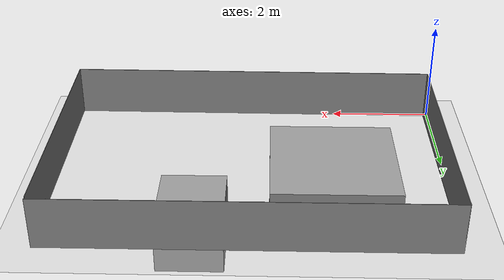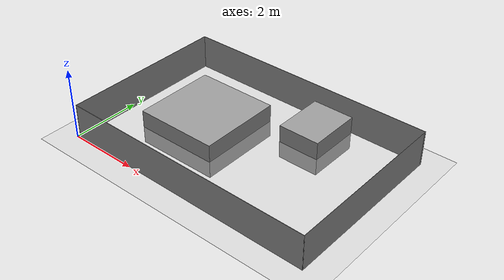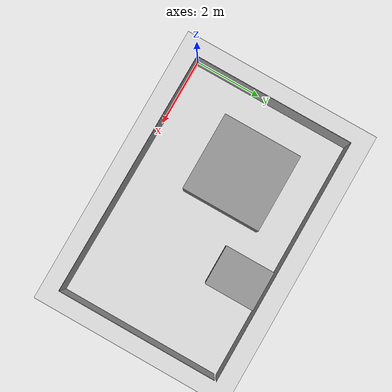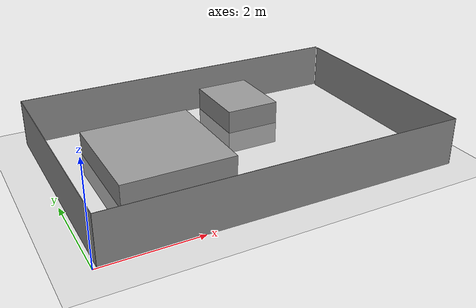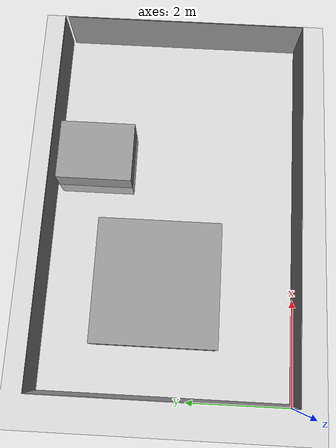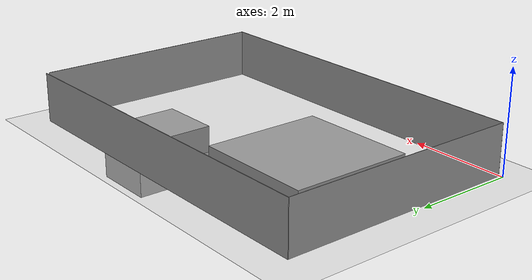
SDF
<sdf version="1.7">
 <world name="default">
  <scene><ambient>0.4 0.4 0.4 1</ambient><background>0.7 0.7 0.7 1</background><shadows>1</shadows></scene>
  <light name="sun" type="directional">
   <pose>0 0 10 0 -0 0</pose>
   <diffuse>0.8 0.8 0.8 1</diffuse>
   <specular>0.2 0.2 0.2 1</specular>
   <attenuation>
    <range>1000</range>
    <constant>0.9</constant>
    <linear>0.01</linear>
    <quadratic>0.001</quadratic>
   </attenuation>
   <direction>-0.5 0.1 -0.9</direction>
   <spot><inner_angle>0</inner_angle><outer_angle>0</outer_angle><falloff>0</falloff></spot>
  </light>
  <model name="ground_plane">
   <static>1</static>
   <link name="link">
    <collision name="collision">
     <geometry><plane><normal>0 0 1</normal><size>100 100</size></plane></geometry>
     <surface>
      <contact><collide_bitmask>65535</collide_bitmask></contact>
      <friction><ode><mu>100</mu><mu2>50</mu2></ode></friction>
     </surface>
    </collision>
    <visual name="visual">
     <cast_shadows>0</cast_shadows>
     <geometry><plane><normal>0 0 1</normal><size>100 100</size></plane></geometry>
     <material>
      <script><uri>file://media/materials/scripts/gazebo.material</uri><name>Gazebo/Grey</name></script>
     </material>
    </visual>
   </link>
  </model>
  <physics type="ode">
   <real_time_update_rate>1000</real_time_update_rate>
   <max_step_size>0.001</max_step_size>
   <real_time_factor>1</real_time_factor>
   <ode>
    <solver>
     <type>quick</type>
     <iters>150</iters>
     <precon_iters>0</precon_iters>
     <sor>1.4</sor>
     <use_dynamic_moi_rescaling>1</use_dynamic_moi_rescaling>
    </solver>
    <constraints>
     <cfm>1e-05</cfm>
     <erp>0.2</erp>
     <contact_max_correcting_vel>2000</contact_max_correcting_vel>
     <contact_surface_layer>0.01</contact_surface_layer>
    </constraints>
   </ode>
  </physics>
  <gravity>0 0 -9.8</gravity>
  <magnetic_field>6e-06 2.3e-05 -4.2e-05</magnetic_field>
  <atmosphere type="adiabatic"/>
  <spherical_coordinates>
   <surface_model>EARTH_WGS84</surface_model>
   <latitude_deg>0</latitude_deg>
   <longitude_deg>0</longitude_deg>
   <elevation>0</elevation>
   <heading_deg>0</heading_deg>
  </spherical_coordinates>
  <model name="RIL_Lab">
   <link name="Wall_11">
    <pose>0 2.42502 0 0 -0 0</pose>
    <visual name="Wall_11_Visual">
     <pose>0 0 0.5 0 -0 0</pose>
     <geometry><box><size>7.36035 0.01 1</size></box></geometry>
     <material>
      <script><uri>file://media/materials/scripts/gazebo.material</uri><name>Gazebo/Grey</name></script>
      <ambient>1 1 1 1</ambient>
      <shader type="pixel"/>
     </material>
     <meta><layer>0</layer></meta>
    </visual>
    <collision name="Wall_11_Collision">
     <pose>0 0 0.5 0 -0 0</pose>
     <geometry><box><size>7.36035 0.01 1</size></box></geometry>
     <surface>
      <friction>
       <ode><mu>1</mu><mu2>1</mu2><fdir1>0 0 0</fdir1><slip1>0</slip1><slip2>0</slip2></ode>
       <torsional>
        <coefficient>1</coefficient>
        <patch_radius>0</patch_radius>
        <surface_radius>0</surface_radius>
        <use_patch_radius>1</use_patch_radius>
        <ode><slip>0</slip></ode>
       </torsional>
      </friction>
      <bounce><restitution_coefficient>0</restitution_coefficient><threshold>1e+06</threshold></bounce>
      <contact>
       <collide_without_contact>0</collide_without_contact>
       <collide_without_contact_bitmask>1</collide_without_contact_bitmask>
       <collide_bitmask>1</collide_bitmask>
       <ode>
        <soft_cfm>0</soft_cfm>
        <soft_erp>0.2</soft_erp>
        <kp>1e+13</kp>
        <kd>1</kd>
        <max_vel>0.01</max_vel>
        <min_depth>0</min_depth>
       </ode>
       <bullet>
        <split_impulse>1</split_impulse>
        <split_impulse_penetration_threshold>-0.01</split_impulse_penetration_threshold>
        <soft_cfm>0</soft_cfm>
        <soft_erp>0.2</soft_erp>
        <kp>1e+13</kp>
        <kd>1</kd>
       </bullet>
      </contact>
     </surface>
    </collision>
   </link>
   <link name="Wall_13">
    <pose>-3.675 0.03002 0 0 0 -1.5708</pose>
    <visual name="Wall_13_Visual">
     <pose>0 0 0.5 0 -0 0</pose>
     <geometry><box><size>4.8 0.01 1</size></box></geometry>
     <material>
      <script><uri>file://media/materials/scripts/gazebo.material</uri><name>Gazebo/Grey</name></script>
      <ambient>1 1 1 1</ambient>
      <shader type="pixel"/>
     </material>
     <meta><layer>0</layer></meta>
    </visual>
    <collision name="Wall_13_Collision">
     <pose>0 0 0.5 0 -0 0</pose>
     <geometry><box><size>4.8 0.01 1</size></box></geometry>
     <surface>
      <friction>
       <ode><mu>1</mu><mu2>1</mu2><fdir1>0 0 0</fdir1><slip1>0</slip1><slip2>0</slip2></ode>
       <torsional>
        <coefficient>1</coefficient>
        <patch_radius>0</patch_radius>
        <surface_radius>0</surface_radius>
        <use_patch_radius>1</use_patch_radius>
        <ode><slip>0</slip></ode>
       </torsional>
      </friction>
      <bounce><restitution_coefficient>0</restitution_coefficient><threshold>1e+06</threshold></bounce>
      <contact>
       <collide_without_contact>0</collide_without_contact>
       <collide_without_contact_bitmask>1</collide_without_contact_bitmask>
       <collide_bitmask>1</collide_bitmask>
       <ode>
        <soft_cfm>0</soft_cfm>
        <soft_erp>0.2</soft_erp>
        <kp>1e+13</kp>
        <kd>1</kd>
        <max_vel>0.01</max_vel>
        <min_depth>0</min_depth>
       </ode>
       <bullet>
        <split_impulse>1</split_impulse>
        <split_impulse_penetration_threshold>-0.01</split_impulse_penetration_threshold>
        <soft_cfm>0</soft_cfm>
        <soft_erp>0.2</soft_erp>
        <kp>1e+13</kp>
        <kd>1</kd>
       </bullet>
      </contact>
     </surface>
    </collision>
   </link>
   <link name="Wall_14">
    <pose>0 -2.39498 0 0 0 -0.008163</pose>
    <inertial>
     <mass>1</mass>
     <inertia><ixx>1</ixx><ixy>0</ixy><ixz>0</ixz><iyy>1</iyy><iyz>0</iyz><izz>1</izz></inertia>
    </inertial>
    <visual name="Wall_14_Visual">
     <pose>0 0 0.5 0 -0 0</pose>
     <geometry><box><size>7.36024 0.01 1</size></box></geometry>
     <material>
      <script><uri>file://media/materials/scripts/gazebo.material</uri><name>Gazebo/Grey</name></script>
      <ambient>1 1 1 1</ambient>
      <shader type="pixel"><normal_map>__default__</normal_map></shader>
     </material>
     <meta><layer>0</layer></meta>
    </visual>
    <collision name="Wall_14_Collision">
     <pose>0 0 0.5 0 -0 0</pose>
     <geometry><box><size>7.36024 0.01 1</size></box></geometry>
     <surface>
      <friction>
       <ode><mu>1</mu><mu2>1</mu2><fdir1>0 0 0</fdir1><slip1>0</slip1><slip2>0</slip2></ode>
       <torsional>
        <coefficient>1</coefficient>
        <patch_radius>0</patch_radius>
        <surface_radius>0</surface_radius>
        <use_patch_radius>1</use_patch_radius>
        <ode><slip>0</slip></ode>
       </torsional>
      </friction>
      <bounce><restitution_coefficient>0</restitution_coefficient><threshold>1e+06</threshold></bounce>
      <contact>
       <collide_without_contact>0</collide_without_contact>
       <collide_without_contact_bitmask>1</collide_without_contact_bitmask>
       <collide_bitmask>1</collide_bitmask>
       <ode>
        <soft_cfm>0</soft_cfm>
        <soft_erp>0.2</soft_erp>
        <kp>1e+13</kp>
        <kd>1</kd>
        <max_vel>0.01</max_vel>
        <min_depth>0</min_depth>
       </ode>
       <bullet>
        <split_impulse>1</split_impulse>
        <split_impulse_penetration_threshold>-0.01</split_impulse_penetration_threshold>
        <soft_cfm>0</soft_cfm>
        <soft_erp>0.2</soft_erp>
        <kp>1e+13</kp>
        <kd>1</kd>
       </bullet>
      </contact>
     </surface>
    </collision>
   </link>
   <link name="Wall_15">
    <pose>3.675 -0.02998 0 0 -0 1.5708</pose>
    <visual name="Wall_15_Visual">
     <pose>0 0 0.5 0 -0 0</pose>
     <geometry><box><size>4.8 0.01 1</size></box></geometry>
     <material>
      <script><uri>file://media/materials/scripts/gazebo.material</uri><name>Gazebo/Grey</name></script>
      <ambient>1 1 1 1</ambient>
      <shader type="pixel"/>
     </material>
     <meta><layer>0</layer></meta>
    </visual>
    <collision name="Wall_15_Collision">
     <pose>0 0 0.5 0 -0 0</pose>
     <geometry><box><size>4.8 0.01 1</size></box></geometry>
     <surface>
      <friction>
       <ode><mu>1</mu><mu2>1</mu2><fdir1>0 0 0</fdir1><slip1>0</slip1><slip2>0</slip2></ode>
       <torsional>
        <coefficient>1</coefficient>
        <patch_radius>0</patch_radius>
        <surface_radius>0</surface_radius>
        <use_patch_radius>1</use_patch_radius>
        <ode><slip>0</slip></ode>
       </torsional>
      </friction>
      <bounce><restitution_coefficient>0</restitution_coefficient><threshold>1e+06</threshold></bounce>
      <contact>
       <collide_without_contact>0</collide_without_contact>
       <collide_without_contact_bitmask>1</collide_without_contact_bitmask>
       <collide_bitmask>1</collide_bitmask>
       <ode>
        <soft_cfm>0</soft_cfm>
        <soft_erp>0.2</soft_erp>
        <kp>1e+13</kp>
        <kd>1</kd>
        <max_vel>0.01</max_vel>
        <min_depth>0</min_depth>
       </ode>
       <bullet>
        <split_impulse>1</split_impulse>
        <split_impulse_penetration_threshold>-0.01</split_impulse_penetration_threshold>
        <soft_cfm>0</soft_cfm>
        <soft_erp>0.2</soft_erp>
        <kp>1e+13</kp>
        <kd>1</kd>
       </bullet>
      </contact>
     </surface>
    </collision>
   </link>
   <static>1</static>
   <allow_auto_disable>0</allow_auto_disable>
   <pose>3.75 2.4 0 0 -0 0</pose>
  </model>
  <model name="table_ril_1">
   <link name="link">
    <inertial>
     <mass>1</mass>
     <inertia>
      <ixx>0.166667</ixx>
      <ixy>0</ixy>
      <ixz>0</ixz>
      <iyy>0.166667</iyy>
      <iyz>0</iyz>
      <izz>0.166667</izz>
     </inertia>
    </inertial>
    <pose>2.165 2.7 0 0 -0 0</pose>
    <visual name="visual">
     <geometry><box><size>2.39 2.41 1</size></box></geometry>
     <material>
      <script><name>Gazebo/Grey</name><uri>file://media/materials/scripts/gazebo.material</uri></script>
      <shader type="pixel"><normal_map>__default__</normal_map></shader>
      <ambient>0.3 0.3 0.3 1</ambient>
      <diffuse>0.7 0.7 0.7 1</diffuse>
      <specular>0.01 0.01 0.01 1</specular>
      <emissive>0 0 0 1</emissive>
     </material>
    </visual>
    <collision name="collision">
     <geometry><box><size>1 1 1</size></box></geometry>
     <surface>
      <friction>
       <ode><mu>1</mu><mu2>1</mu2><fdir1>0 0 0</fdir1><slip1>0</slip1><slip2>0</slip2></ode>
       <torsional>
        <coefficient>1</coefficient>
        <patch_radius>0</patch_radius>
        <surface_radius>0</surface_radius>
        <use_patch_radius>1</use_patch_radius>
        <ode><slip>0</slip></ode>
       </torsional>
      </friction>
      <bounce><restitution_coefficient>0</restitution_coefficient><threshold>1e+06</threshold></bounce>
      <contact>
       <collide_without_contact>0</collide_without_contact>
       <collide_without_contact_bitmask>1</collide_without_contact_bitmask>
       <collide_bitmask>1</collide_bitmask>
       <ode>
        <soft_cfm>0</soft_cfm>
        <soft_erp>0.2</soft_erp>
        <kp>1e+13</kp>
        <kd>1</kd>
        <max_vel>0.01</max_vel>
        <min_depth>0</min_depth>
       </ode>
       <bullet>
        <split_impulse>1</split_impulse>
        <split_impulse_penetration_threshold>-0.01</split_impulse_penetration_threshold>
        <soft_cfm>0</soft_cfm>
        <soft_erp>0.2</soft_erp>
        <kp>1e+13</kp>
        <kd>1</kd>
       </bullet>
      </contact>
     </surface>
    </collision>
   </link>
   <static>0</static>
   <pose>0.00706 -0.04925 0 0 -0 0</pose>
  </model>
  <light name="user_spot_light_0" type="spot">
   <pose>0.611419 0.645842 1 0 -0 0</pose>
   <diffuse>0.5 0.5 0.5 1</diffuse>
   <specular>0.1 0.1 0.1 1</specular>
   <direction>0 0 -1</direction>
   <attenuation>
    <range>20</range>
    <constant>0.5</constant>
    <linear>0.01</linear>
    <quadratic>0.001</quadratic>
   </attenuation>
   <cast_shadows>0</cast_shadows>
   <spot><inner_angle>0.6</inner_angle><outer_angle>1</outer_angle><falloff>1</falloff></spot>
  </light>
  <model name="unit_box2">
   <link name="link">
    <inertial>
     <mass>1</mass>
     <inertia>
      <ixx>0.166667</ixx>
      <ixy>0</ixy>
      <ixz>0</ixz>
      <iyy>0.166667</iyy>
      <iyz>0</iyz>
      <izz>0.166667</izz>
     </inertia>
    </inertial>
    <visual name="visual">
     <geometry><box><size>1.2 1.51 1</size></box></geometry>
     <material>
      <script><name>Gazebo/Grey</name><uri>file://media/materials/scripts/gazebo.material</uri></script>
      <shader type="pixel"><normal_map>__default__</normal_map></shader>
      <ambient>0.3 0.3 0.3 1</ambient>
      <diffuse>0.7 0.7 0.7 1</diffuse>
      <specular>0.01 0.01 0.01 1</specular>
      <emissive>0 0 0 1</emissive>
     </material>
    </visual>
    <collision name="collision">
     <geometry><box><size>1 1 1</size></box></geometry>
     <surface>
      <friction>
       <ode><mu>1</mu><mu2>1</mu2><fdir1>0 0 0</fdir1><slip1>0</slip1><slip2>0</slip2></ode>
       <torsional>
        <coefficient>1</coefficient>
        <patch_radius>0</patch_radius>
        <surface_radius>0</surface_radius>
        <use_patch_radius>1</use_patch_radius>
        <ode><slip>0</slip></ode>
       </torsional>
      </friction>
      <bounce><restitution_coefficient>0</restitution_coefficient><threshold>1e+06</threshold></bounce>
      <contact>
       <collide_without_contact>0</collide_without_contact>
       <collide_without_contact_bitmask>1</collide_without_contact_bitmask>
       <collide_bitmask>1</collide_bitmask>
       <ode>
        <soft_cfm>0</soft_cfm>
        <soft_erp>0.2</soft_erp>
        <kp>1e+13</kp>
        <kd>1</kd>
        <max_vel>0.01</max_vel>
        <min_depth>0</min_depth>
       </ode>
       <bullet>
        <split_impulse>1</split_impulse>
        <split_impulse_penetration_threshold>-0.01</split_impulse_penetration_threshold>
        <soft_cfm>0</soft_cfm>
        <soft_erp>0.2</soft_erp>
        <kp>1e+13</kp>
        <kd>1</kd>
       </bullet>
      </contact>
     </surface>
    </collision>
   </link>
   <static>1</static>
   <allow_auto_disable>0</allow_auto_disable>
   <pose>4.74 4.04 0 0 -0 0</pose>
  </model>
  <light name="user_spot_light_1" type="spot">
   <pose>6.9 4.2 1 0 -0 0</pose>
   <diffuse>0.5 0.5 0.5 1</diffuse>
   <specular>0.1 0.1 0.1 1</specular>
   <direction>0 0 -1</direction>
   <attenuation>
    <range>20</range>
    <constant>0.5</constant>
    <linear>0.01</linear>
    <quadratic>0.001</quadratic>
   </attenuation>
   <cast_shadows>0</cast_shadows>
   <spot><inner_angle>0.6</inner_angle><outer_angle>1</outer_angle><falloff>1</falloff></spot>
  </light>
 </world>
</sdf>
